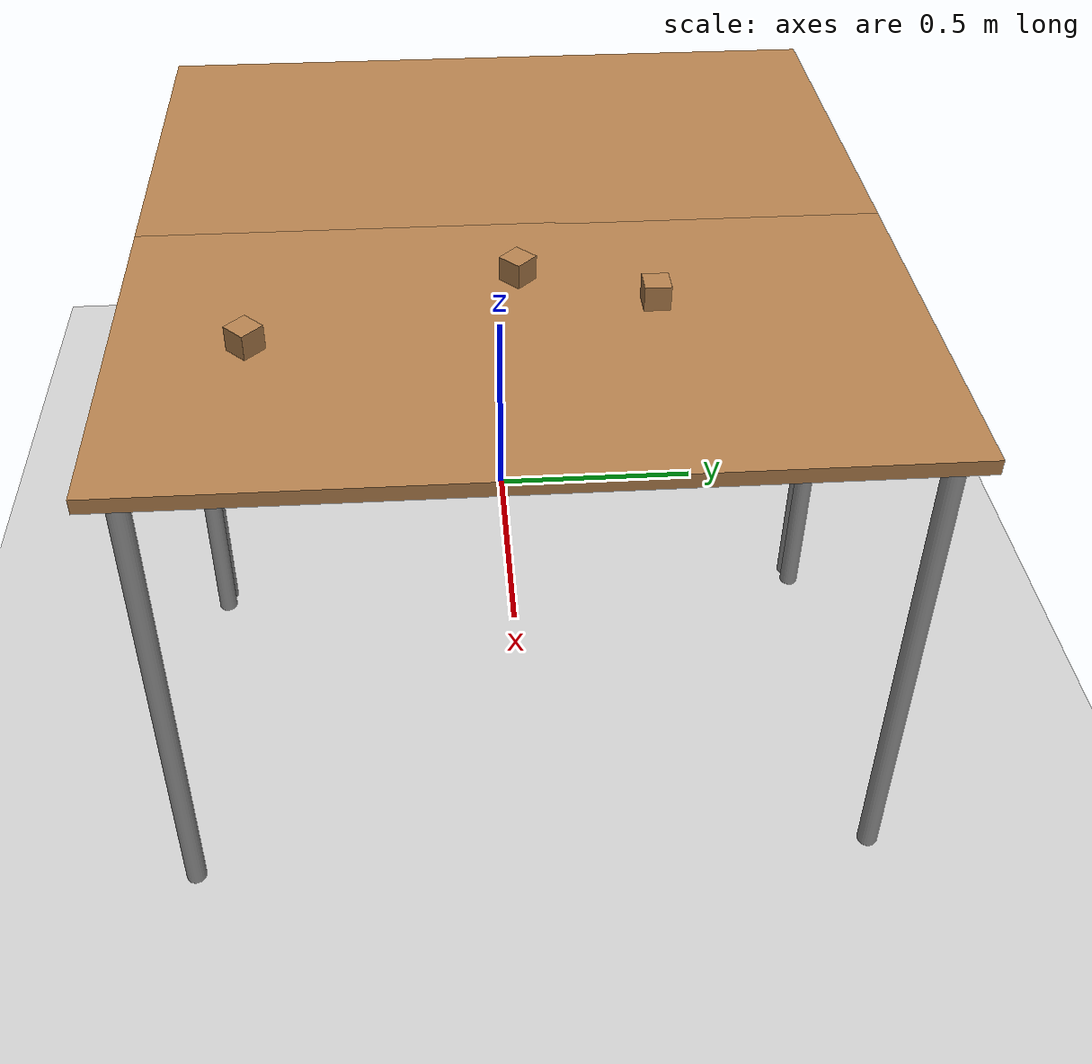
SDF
<sdf version="1.6">
 <world name="default">
  <plugin name="ros_link_attacher_plugin" filename="libgazebo_ros_link_attacher.so"/>
  <light name="sun" type="directional">
   <pose>0 0 10 0 -0 0</pose>
   <diffuse>0.8 0.8 0.8 1</diffuse>
   <specular>0.2 0.2 0.2 1</specular>
   <attenuation>
    <range>1000</range>
    <constant>0.9</constant>
    <linear>0.01</linear>
    <quadratic>0.001</quadratic>
   </attenuation>
   <direction>-0.5 0.1 -0.9</direction>
  </light>
  <model name="ground_plane">
   <static>1</static>
   <link name="link">
    <collision name="collision">
     <geometry><plane><normal>0 0 1</normal><size>100 100</size></plane></geometry>
     <surface>
      <contact><collide_bitmask>65535</collide_bitmask></contact>
      <friction><ode><mu>100</mu><mu2>50</mu2></ode></friction>
     </surface>
    </collision>
    <visual name="visual">
     <cast_shadows>0</cast_shadows>
     <geometry><plane><normal>0 0 1</normal><size>100 100</size></plane></geometry>
     <material>
      <script><uri>file://media/materials/scripts/gazebo.material</uri><name>Gazebo/Grey</name></script>
     </material>
    </visual>
   </link>
  </model>
  <gravity>0 0 -9.8</gravity>
  <magnetic_field>6e-06 2.3e-05 -4.2e-05</magnetic_field>
  <atmosphere type="adiabatic"/>
  <physics name="default_physics" default="0" type="ode">
   <max_step_size>0.001</max_step_size>
   <real_time_factor>1</real_time_factor>
   <real_time_update_rate>1000</real_time_update_rate>
  </physics>
  <scene><ambient>0.4 0.4 0.4 1</ambient><background>0.7 0.7 0.7 1</background><shadows>1</shadows></scene>
  <audio><device>default</device></audio>
  <spherical_coordinates>
   <surface_model>EARTH_WGS84</surface_model>
   <latitude_deg>0</latitude_deg>
   <longitude_deg>0</longitude_deg>
   <elevation>0</elevation>
   <heading_deg>0</heading_deg>
  </spherical_coordinates>
  <model name="model_box_2">
   <link name="link_0">
    <inertial>
     <mass>0.00012788</mass>
     <inertia><ixx>5e-08</ixx><ixy>0</ixy><ixz>0</ixz><iyy>5e-08</iyy><iyz>0</iyz><izz>5e-08</izz></inertia>
    </inertial>
    <visual name="visual">
     <geometry><box><size>0.05 0.05 0.05</size></box></geometry>
     <material>
      <lighting>1</lighting>
      <script><uri>file://media/materials/scripts/gazebo.material</uri><name>Gazebo/WoodFloor</name></script>
      <shader type="vertex"><normal_map>__default__</normal_map></shader>
      <ambient>0.3 0.3 0.3 1</ambient>
      <diffuse>0.7 0.7 0.7 1</diffuse>
      <specular>0.01 0.01 0.01 1</specular>
      <emissive>0 0 0 1</emissive>
     </material>
    </visual>
    <collision name="collision">
     <geometry><box><size>0.05 0.05 0.05</size></box></geometry>
     <surface>
      <friction>
       <ode><mu>1</mu><mu2>1</mu2><fdir1>0 0 0</fdir1><slip1>0</slip1><slip2>0</slip2></ode>
       <torsional>
        <coefficient>1</coefficient>
        <patch_radius>0</patch_radius>
        <surface_radius>0</surface_radius>
        <use_patch_radius>1</use_patch_radius>
        <ode><slip>0</slip></ode>
       </torsional>
      </friction>
      <bounce><restitution_coefficient>0</restitution_coefficient><threshold>1e+06</threshold></bounce>
      <contact>
       <collide_without_contact>0</collide_without_contact>
       <collide_without_contact_bitmask>1</collide_without_contact_bitmask>
       <collide_bitmask>1</collide_bitmask>
       <ode>
        <soft_cfm>0</soft_cfm>
        <soft_erp>0.2</soft_erp>
        <kp>1e+13</kp>
        <kd>1</kd>
        <max_vel>0.01</max_vel>
        <min_depth>0</min_depth>
       </ode>
       <bullet>
        <split_impulse>1</split_impulse>
        <split_impulse_penetration_threshold>-0.01</split_impulse_penetration_threshold>
        <soft_cfm>0</soft_cfm>
        <soft_erp>0.2</soft_erp>
        <kp>1e+13</kp>
        <kd>1</kd>
       </bullet>
      </contact>
     </surface>
    </collision>
   </link>
   <static>0</static>
   <pose>0.599999 -4e-06 1.03999 7.2e-05 -6.7e-05 0.784997</pose>
  </model>
  <model name="model_table2">
   <static>1</static>
   <link name="link">
    <collision name="surface">
     <pose>0 0 1 0 -0 0</pose>
     <geometry><box><size>1.5 0.8 0.03</size></box></geometry>
     <surface><friction><ode><mu>0.6</mu><mu2>0.6</mu2></ode></friction></surface>
    </collision>
    <visual name="visual1">
     <pose>0 0 1 0 -0 0</pose>
     <geometry><box><size>1.5 0.8 0.03</size></box></geometry>
     <material>
      <diffuse>1 1 1 1</diffuse>
      <script><uri>file://media/materials/scripts/gazebo.material</uri><name>Gazebo/Wood</name></script>
     </material>
    </visual>
    <collision name="front_left_leg">
     <pose>0.68 0.38 0.5 0 -0 0</pose>
     <geometry><cylinder><radius>0.02</radius><length>1</length></cylinder></geometry>
    </collision>
    <visual name="front_left_leg">
     <pose>0.68 0.38 0.5 0 -0 0</pose>
     <geometry><cylinder><radius>0.02</radius><length>1</length></cylinder></geometry>
     <material>
      <diffuse>0.5 0.5 0.5 1</diffuse>
      <script><uri>file://media/materials/scripts/gazebo.material</uri><name>Gazebo/Grey</name></script>
     </material>
    </visual>
    <collision name="front_right_leg">
     <pose>0.68 -0.38 0.5 0 -0 0</pose>
     <geometry><cylinder><radius>0.02</radius><length>1</length></cylinder></geometry>
    </collision>
    <visual name="front_right_leg">
     <pose>0.68 -0.38 0.5 0 -0 0</pose>
     <geometry><cylinder><radius>0.02</radius><length>1</length></cylinder></geometry>
     <material>
      <diffuse>0.5 0.5 0.5 1</diffuse>
      <script><uri>file://media/materials/scripts/gazebo.material</uri><name>Gazebo/Grey</name></script>
     </material>
    </visual>
    <collision name="back_right_leg">
     <pose>-0.68 -0.38 0.5 0 -0 0</pose>
     <geometry><cylinder><radius>0.02</radius><length>1</length></cylinder></geometry>
    </collision>
    <visual name="back_right_leg">
     <pose>-0.68 -0.38 0.5 0 -0 0</pose>
     <geometry><cylinder><radius>0.02</radius><length>1</length></cylinder></geometry>
     <material>
      <diffuse>0.5 0.5 0.5 1</diffuse>
      <script><uri>file://media/materials/scripts/gazebo.material</uri><name>Gazebo/Grey</name></script>
     </material>
    </visual>
    <collision name="back_left_leg">
     <pose>-0.68 0.38 0.5 0 -0 0</pose>
     <geometry><cylinder><radius>0.02</radius><length>1</length></cylinder></geometry>
    </collision>
    <visual name="back_left_leg">
     <pose>-0.68 0.38 0.5 0 -0 0</pose>
     <geometry><cylinder><radius>0.02</radius><length>1</length></cylinder></geometry>
     <material>
      <diffuse>0.5 0.5 0.5 1</diffuse>
      <script><uri>file://media/materials/scripts/gazebo.material</uri><name>Gazebo/Grey</name></script>
     </material>
    </visual>
   </link>
   <pose>0.794 0 0 0 -0 1.5708</pose>
  </model>
  <model name="model_box_1">
   <link name="link_0">
    <inertial>
     <mass>0.00012788</mass>
     <inertia><ixx>5e-08</ixx><ixy>0</ixy><ixz>0</ixz><iyy>5e-08</iyy><iyz>0</iyz><izz>5e-08</izz></inertia>
    </inertial>
    <visual name="visual">
     <geometry><box><size>0.05 0.05 0.05</size></box></geometry>
     <material>
      <lighting>1</lighting>
      <script><uri>file://media/materials/scripts/gazebo.material</uri><name>Gazebo/WoodFloor</name></script>
      <shader type="vertex"><normal_map>__default__</normal_map></shader>
      <ambient>0.3 0.3 0.3 1</ambient>
      <diffuse>0.7 0.7 0.7 1</diffuse>
      <specular>0.01 0.01 0.01 1</specular>
      <emissive>0 0 0 1</emissive>
     </material>
    </visual>
    <collision name="collision">
     <geometry><box><size>0.05 0.05 0.05</size></box></geometry>
     <surface>
      <friction>
       <ode><mu>1</mu><mu2>1</mu2><fdir1>0 0 0</fdir1><slip1>0</slip1><slip2>0</slip2></ode>
       <torsional>
        <coefficient>1</coefficient>
        <patch_radius>0</patch_radius>
        <surface_radius>0</surface_radius>
        <use_patch_radius>1</use_patch_radius>
        <ode><slip>0</slip></ode>
       </torsional>
      </friction>
      <bounce><restitution_coefficient>0</restitution_coefficient><threshold>1e+06</threshold></bounce>
      <contact>
       <collide_without_contact>0</collide_without_contact>
       <collide_without_contact_bitmask>1</collide_without_contact_bitmask>
       <collide_bitmask>1</collide_bitmask>
       <ode>
        <soft_cfm>0</soft_cfm>
        <soft_erp>0.2</soft_erp>
        <kp>1e+13</kp>
        <kd>1</kd>
        <max_vel>0.01</max_vel>
        <min_depth>0</min_depth>
       </ode>
       <bullet>
        <split_impulse>1</split_impulse>
        <split_impulse_penetration_threshold>-0.01</split_impulse_penetration_threshold>
        <soft_cfm>0</soft_cfm>
        <soft_erp>0.2</soft_erp>
        <kp>1e+13</kp>
        <kd>1</kd>
       </bullet>
      </contact>
     </surface>
    </collision>
   </link>
   <static>0</static>
   <pose>0.7 0.250006 1.03999 3.7e-05 -0 3e-06</pose>
  </model>
  <model name="model_table1">
   <static>1</static>
   <link name="link">
    <collision name="surface">
     <pose>0 0 1 0 -0 0</pose>
     <geometry><box><size>1.5 0.8 0.03</size></box></geometry>
     <surface><friction><ode><mu>0.6</mu><mu2>0.6</mu2></ode></friction></surface>
    </collision>
    <visual name="visual1">
     <pose>0 0 1 0 -0 0</pose>
     <geometry><box><size>1.5 0.8 0.03</size></box></geometry>
     <material>
      <diffuse>1 1 1 1</diffuse>
      <script><uri>file://media/materials/scripts/gazebo.material</uri><name>Gazebo/Wood</name></script>
     </material>
    </visual>
    <collision name="front_left_leg">
     <pose>0.68 0.38 0.5 0 -0 0</pose>
     <geometry><cylinder><radius>0.02</radius><length>1</length></cylinder></geometry>
    </collision>
    <visual name="front_left_leg">
     <pose>0.68 0.38 0.5 0 -0 0</pose>
     <geometry><cylinder><radius>0.02</radius><length>1</length></cylinder></geometry>
     <material>
      <diffuse>0.5 0.5 0.5 1</diffuse>
      <script><uri>file://media/materials/scripts/gazebo.material</uri><name>Gazebo/Grey</name></script>
     </material>
    </visual>
    <collision name="front_right_leg">
     <pose>0.68 -0.38 0.5 0 -0 0</pose>
     <geometry><cylinder><radius>0.02</radius><length>1</length></cylinder></geometry>
    </collision>
    <visual name="front_right_leg">
     <pose>0.68 -0.38 0.5 0 -0 0</pose>
     <geometry><cylinder><radius>0.02</radius><length>1</length></cylinder></geometry>
     <material>
      <diffuse>0.5 0.5 0.5 1</diffuse>
      <script><uri>file://media/materials/scripts/gazebo.material</uri><name>Gazebo/Grey</name></script>
     </material>
    </visual>
    <collision name="back_right_leg">
     <pose>-0.68 -0.38 0.5 0 -0 0</pose>
     <geometry><cylinder><radius>0.02</radius><length>1</length></cylinder></geometry>
    </collision>
    <visual name="back_right_leg">
     <pose>-0.68 -0.38 0.5 0 -0 0</pose>
     <geometry><cylinder><radius>0.02</radius><length>1</length></cylinder></geometry>
     <material>
      <diffuse>0.5 0.5 0.5 1</diffuse>
      <script><uri>file://media/materials/scripts/gazebo.material</uri><name>Gazebo/Grey</name></script>
     </material>
    </visual>
    <collision name="back_left_leg">
     <pose>-0.68 0.38 0.5 0 -0 0</pose>
     <geometry><cylinder><radius>0.02</radius><length>1</length></cylinder></geometry>
    </collision>
    <visual name="back_left_leg">
     <pose>-0.68 0.38 0.5 0 -0 0</pose>
     <geometry><cylinder><radius>0.02</radius><length>1</length></cylinder></geometry>
     <material>
      <diffuse>0.5 0.5 0.5 1</diffuse>
      <script><uri>file://media/materials/scripts/gazebo.material</uri><name>Gazebo/Grey</name></script>
     </material>
    </visual>
   </link>
   <pose>0 0 0 0 -0 1.5708</pose>
  </model>
  <model name="model_box_3">
   <link name="link_0">
    <inertial>
     <mass>0.00012788</mass>
     <inertia><ixx>5e-08</ixx><ixy>0</ixy><ixz>0</ixz><iyy>5e-08</iyy><iyz>0</iyz><izz>5e-08</izz></inertia>
    </inertial>
    <visual name="visual">
     <geometry><box><size>0.05 0.05 0.05</size></box></geometry>
     <material>
      <lighting>1</lighting>
      <script><uri>file://media/materials/scripts/gazebo.material</uri><name>Gazebo/WoodFloor</name></script>
      <shader type="vertex"><normal_map>__default__</normal_map></shader>
      <ambient>0.3 0.3 0.3 1</ambient>
      <diffuse>0.7 0.7 0.7 1</diffuse>
      <specular>0.01 0.01 0.01 1</specular>
      <emissive>0 0 0 1</emissive>
     </material>
    </visual>
    <collision name="collision">
     <geometry><box><size>0.05 0.05 0.05</size></box></geometry>
     <surface>
      <friction>
       <ode><mu>1</mu><mu2>1</mu2><fdir1>0 0 0</fdir1><slip1>0</slip1><slip2>0</slip2></ode>
       <torsional>
        <coefficient>1</coefficient>
        <patch_radius>0</patch_radius>
        <surface_radius>0</surface_radius>
        <use_patch_radius>1</use_patch_radius>
        <ode><slip>0</slip></ode>
       </torsional>
      </friction>
      <bounce><restitution_coefficient>0</restitution_coefficient><threshold>1e+06</threshold></bounce>
      <contact>
       <collide_without_contact>0</collide_without_contact>
       <collide_without_contact_bitmask>1</collide_without_contact_bitmask>
       <collide_bitmask>1</collide_bitmask>
       <ode>
        <soft_cfm>0</soft_cfm>
        <soft_erp>0.2</soft_erp>
        <kp>1e+13</kp>
        <kd>1</kd>
        <max_vel>0.01</max_vel>
        <min_depth>0</min_depth>
       </ode>
       <bullet>
        <split_impulse>1</split_impulse>
        <split_impulse_penetration_threshold>-0.01</split_impulse_penetration_threshold>
        <soft_cfm>0</soft_cfm>
        <soft_erp>0.2</soft_erp>
        <kp>1e+13</kp>
        <kd>1</kd>
       </bullet>
      </contact>
     </surface>
    </collision>
   </link>
   <static>0</static>
   <pose>0.799999 -0.500004 1.03999 7.2e-05 -6.7e-05 0.784997</pose>
  </model>
  <light name="user_directional_light_0" type="directional">
   <pose>-9.04934 -9.34477 1 0 -0 0</pose>
   <diffuse>0.5 0.5 0.5 1</diffuse>
   <specular>0.1 0.1 0.1 1</specular>
   <direction>0.1 0.1 -0.9</direction>
   <attenuation>
    <range>20</range>
    <constant>0.5</constant>
    <linear>0.01</linear>
    <quadratic>0.001</quadratic>
   </attenuation>
  </light>
  <light name="user_directional_light_1" type="directional">
   <pose>-9.00822 9.24839 1 0 -0 0</pose>
   <diffuse>0.5 0.5 0.5 1</diffuse>
   <specular>0.1 0.1 0.1 1</specular>
   <direction>0.1 0.1 -0.9</direction>
   <attenuation>
    <range>20</range>
    <constant>0.5</constant>
    <linear>0.01</linear>
    <quadratic>0.001</quadratic>
   </attenuation>
  </light>
  <light name="user_directional_light_2" type="directional">
   <pose>9.45287 -9.23842 1 0 -0 0</pose>
   <diffuse>0.5 0.5 0.5 1</diffuse>
   <specular>0.1 0.1 0.1 1</specular>
   <direction>0.1 0.1 -0.9</direction>
   <attenuation>
    <range>20</range>
    <constant>0.5</constant>
    <linear>0.01</linear>
    <quadratic>0.001</quadratic>
   </attenuation>
  </light>
  <light name="user_directional_light_3" type="directional">
   <pose>9.51224 9.32154 1 0 -0 0</pose>
   <diffuse>0.5 0.5 0.5 1</diffuse>
   <specular>0.1 0.1 0.1 1</specular>
   <direction>0.1 0.1 -0.9</direction>
   <attenuation>
    <range>20</range>
    <constant>0.5</constant>
    <linear>0.01</linear>
    <quadratic>0.001</quadratic>
   </attenuation>
  </light>
  <light name="user_directional_light_4" type="directional">
   <pose>0.267488 9.30773 1 0 -0 0</pose>
   <diffuse>0.5 0.5 0.5 1</diffuse>
   <specular>0.1 0.1 0.1 1</specular>
   <direction>0.1 0.1 -0.9</direction>
   <attenuation>
    <range>20</range>
    <constant>0.5</constant>
    <linear>0.01</linear>
    <quadratic>0.001</quadratic>
   </attenuation>
  </light>
  <light name="user_directional_light_5" type="directional">
   <pose>0.298101 -9.20969 1 0 -0 0</pose>
   <diffuse>0.5 0.5 0.5 1</diffuse>
   <specular>0.1 0.1 0.1 1</specular>
   <direction>0.1 0.1 -0.9</direction>
   <attenuation>
    <range>20</range>
    <constant>0.5</constant>
    <linear>0.01</linear>
    <quadratic>0.001</quadratic>
   </attenuation>
  </light>
 </world>
</sdf>
